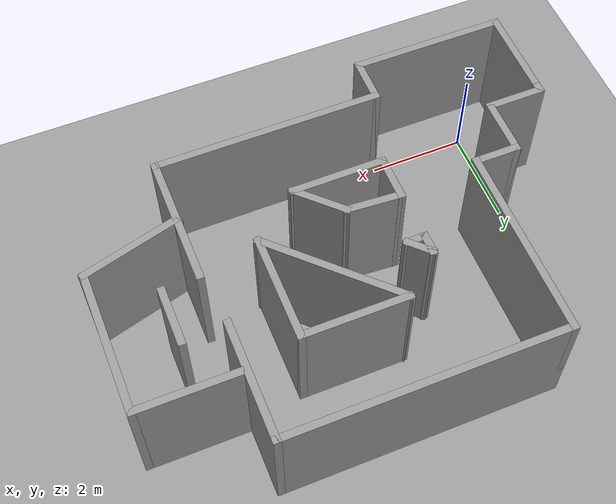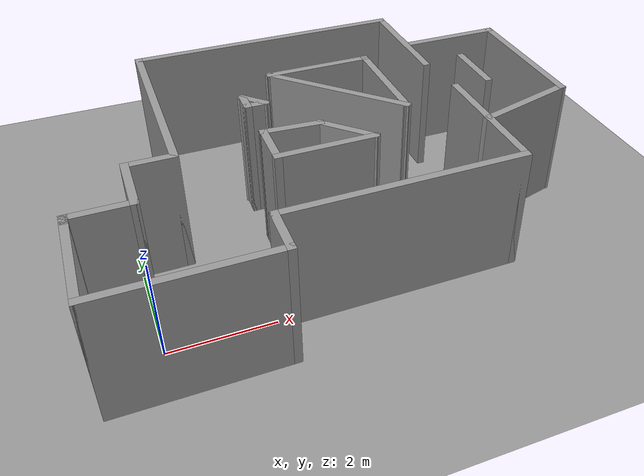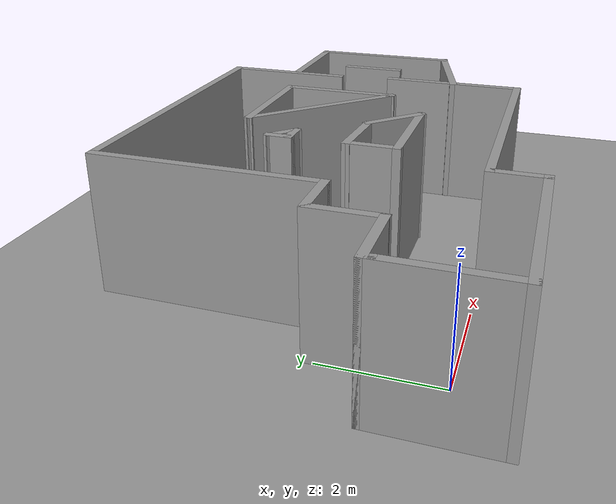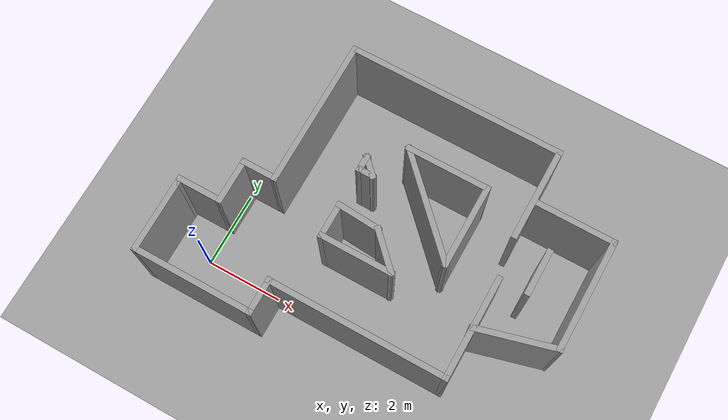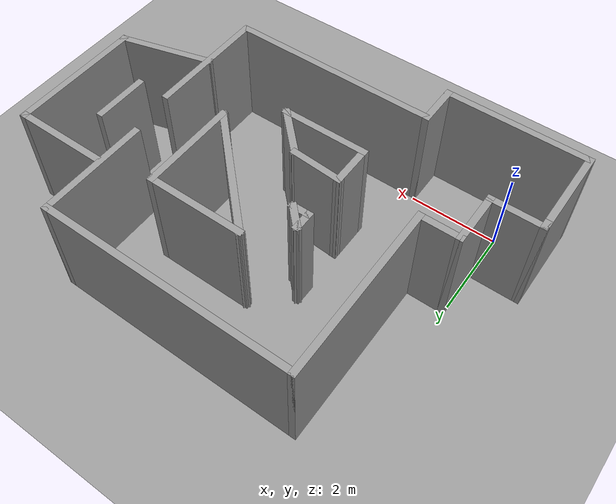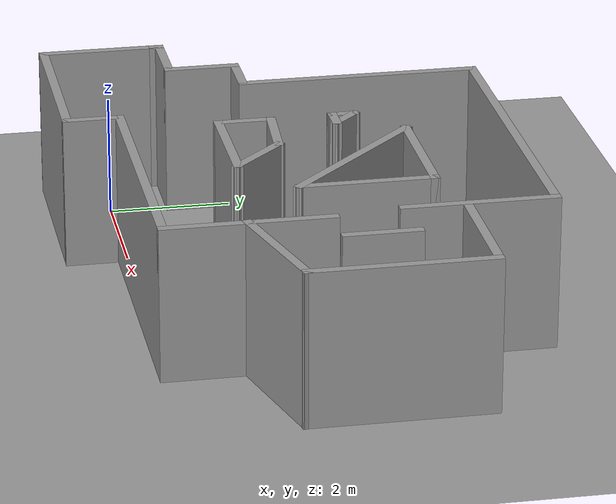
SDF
<sdf version="1.6">
 <world name="default">
  <light name="sun" type="directional">
   <pose>0 0 10 0 -0 0</pose>
   <diffuse>0.8 0.8 0.8 1</diffuse>
   <specular>0.2 0.2 0.2 1</specular>
   <attenuation>
    <range>1000</range>
    <constant>0.9</constant>
    <linear>0.01</linear>
    <quadratic>0.001</quadratic>
   </attenuation>
   <direction>0.5 0.1 -0.9</direction>
  </light>
  <scene><ambient>0.4 0.4 0.4 1</ambient><background>0.7 0.7 0.7 1</background><shadows>1</shadows></scene>
  <physics name="default_physics" default="0" type="ode">
   <max_step_size>0.01</max_step_size>
   <real_time_factor>1</real_time_factor>
   <real_time_update_rate>100</real_time_update_rate>
  </physics>
  <model name="ground_plane_0">
   <static>1</static>
   <link name="link">
    <collision name="collision">
     <geometry><plane><normal>0 0 1</normal><size>100 100</size></plane></geometry>
     <surface><friction><ode><mu>100</mu><mu2>50</mu2></ode></friction></surface>
    </collision>
    <visual name="visual">
     <cast_shadows>0</cast_shadows>
     <geometry><plane><normal>0 0 1</normal><size>100 100</size></plane></geometry>
     <material>
      <script><uri>file://media/materials/scripts/gazebo.material</uri><name>Gazebo/Grey</name></script>
     </material>
    </visual>
    <velocity_decay><linear>0</linear><angular>0</angular></velocity_decay>
   </link>
   <pose>0.497681 0 0 0 -0 0</pose>
  </model>
  <gravity>0 0 -9.8</gravity>
  <magnetic_field>6e-06 2.3e-05 -4.2e-05</magnetic_field>
  <atmosphere type="adiabatic"/>
  <audio><device>default</device></audio>
  <spherical_coordinates>
   <surface_model>EARTH_WGS84</surface_model>
   <latitude_deg>0</latitude_deg>
   <longitude_deg>0</longitude_deg>
   <elevation>0</elevation>
   <heading_deg>0</heading_deg>
  </spherical_coordinates>
  <model name="maze_walls_2">
   <pose>3.77692 2.50924 0 0 -0 0</pose>
   <link name="Wall_100">
    <collision name="Wall_100_Collision">
     <geometry><box><size>4 0.15 2.5</size></box></geometry>
     <pose>0 0 1.25 0 -0 0</pose>
    </collision>
    <visual name="Wall_100_Visual">
     <pose>0 0 1.25 0 -0 0</pose>
     <geometry><box><size>4 0.15 2.5</size></box></geometry>
     <material>
      <script><uri>file://media/materials/scripts/gazebo.material</uri><name>Gazebo/Grey</name></script>
      <ambient>1 1 1 1</ambient>
     </material>
     <meta><layer>0</layer></meta>
    </visual>
    <pose>-2.87718 1.525 0 0 -0 1.5708</pose>
   </link>
   <link name="Wall_101">
    <collision name="Wall_101_Collision">
     <geometry><box><size>5.75 0.15 2.5</size></box></geometry>
     <pose>0 0 1.25 0 -0 0</pose>
    </collision>
    <visual name="Wall_101_Visual">
     <pose>0 0 1.25 0 -0 0</pose>
     <geometry><box><size>5.75 0.15 2.5</size></box></geometry>
     <material>
      <script><uri>file://media/materials/scripts/gazebo.material</uri><name>Gazebo/Grey</name></script>
      <ambient>1 1 1 1</ambient>
     </material>
     <meta><layer>0</layer></meta>
    </visual>
    <pose>-0.07718 3.45 0 0 -0 0</pose>
   </link>
   <link name="Wall_102">
    <collision name="Wall_102_Collision">
     <geometry><box><size>2.5 0.15 2.5</size></box></geometry>
     <pose>0 0 1.25 0 -0 0</pose>
    </collision>
    <visual name="Wall_102_Visual">
     <pose>0 0 1.25 0 -0 0</pose>
     <geometry><box><size>2.5 0.15 2.5</size></box></geometry>
     <material>
      <script><uri>file://media/materials/scripts/gazebo.material</uri><name>Gazebo/Grey</name></script>
      <ambient>1 1 1 1</ambient>
     </material>
     <meta><layer>0</layer></meta>
    </visual>
    <pose>2.72282 2.275 0 0 -0 -1.5708</pose>
   </link>
   <link name="Wall_104">
    <collision name="Wall_104_Collision">
     <geometry><box><size>3.25 0.15 2.5</size></box></geometry>
     <pose>0 0 1.25 0 -0 0</pose>
    </collision>
    <visual name="Wall_104_Visual">
     <pose>0 0 1.25 0 -0 0</pose>
     <geometry><box><size>3.25 0.15 2.5</size></box></geometry>
     <material>
      <script><uri>file://media/materials/scripts/gazebo.material</uri><name>Gazebo/Grey</name></script>
      <ambient>1 1 1 1</ambient>
     </material>
     <meta><layer>0</layer></meta>
    </visual>
    <pose>-3.27718 -3.45 0 0 -0 0</pose>
   </link>
   <link name="Wall_105">
    <collision name="Wall_105_Collision">
     <geometry><box><size>1 0.15 2.5</size></box></geometry>
     <pose>0 0 1.25 0 -0 0</pose>
    </collision>
    <visual name="Wall_105_Visual">
     <pose>0 0 1.25 0 -0 0</pose>
     <geometry><box><size>1 0.15 2.5</size></box></geometry>
     <material>
      <script><uri>file://media/materials/scripts/gazebo.material</uri><name>Gazebo/Grey</name></script>
      <ambient>1 1 1 1</ambient>
     </material>
     <meta><layer>0</layer></meta>
    </visual>
    <pose>-1.72718 -3.025 0 0 -0 1.5708</pose>
   </link>
   <link name="Wall_106">
    <collision name="Wall_106_Collision">
     <geometry><box><size>4.75 0.15 2.5</size></box></geometry>
     <pose>0 0 1.25 0 -0 0</pose>
    </collision>
    <visual name="Wall_106_Visual">
     <pose>0 0 1.25 0 -0 0</pose>
     <geometry><box><size>4.75 0.15 2.5</size></box></geometry>
     <material>
      <script><uri>file://media/materials/scripts/gazebo.material</uri><name>Gazebo/Grey</name></script>
      <ambient>1 1 1 1</ambient>
     </material>
     <meta><layer>0</layer></meta>
    </visual>
    <pose>0.57282 -2.6 0 0 -0 0</pose>
   </link>
   <link name="Wall_107">
    <collision name="Wall_107_Collision">
     <geometry><box><size>2.75 0.15 2.5</size></box></geometry>
     <pose>0 0 1.25 0 -0 0</pose>
    </collision>
    <visual name="Wall_107_Visual">
     <pose>0 0 1.25 0 -0 0</pose>
     <geometry><box><size>2.75 0.15 2.5</size></box></geometry>
     <material>
      <script><uri>file://media/materials/scripts/gazebo.material</uri><name>Gazebo/Grey</name></script>
      <ambient>1 1 1 1</ambient>
     </material>
     <meta><layer>0</layer></meta>
    </visual>
    <pose>2.87282 -1.3 0 0 -0 1.5708</pose>
   </link>
   <link name="Wall_114">
    <collision name="Wall_114_Collision">
     <geometry><box><size>1.25 0.15 2.5</size></box></geometry>
     <pose>0 0 1.25 0 -0 0</pose>
    </collision>
    <visual name="Wall_114_Visual">
     <pose>0 0 1.25 0 -0 0</pose>
     <geometry><box><size>1.25 0.15 2.5</size></box></geometry>
     <material>
      <script><uri>file://media/materials/scripts/gazebo.material</uri><name>Gazebo/Grey</name></script>
      <ambient>1 1 1 1</ambient>
     </material>
     <meta><layer>0</layer></meta>
    </visual>
    <pose>3.59965 0.589532 0 0 -0 1.5708</pose>
   </link>
   <link name="Wall_118">
    <collision name="Wall_118_Collision">
     <geometry><box><size>3 0.15 2.5</size></box></geometry>
     <pose>0 0 1.25 0 -0 0</pose>
    </collision>
    <visual name="Wall_118_Visual">
     <pose>0 0 1.25 0 -0 0</pose>
     <geometry><box><size>3 0.15 2.5</size></box></geometry>
     <material>
      <script><uri>file://media/materials/scripts/gazebo.material</uri><name>Gazebo/Grey</name></script>
      <ambient>1 1 1 1</ambient>
     </material>
     <meta><layer>0</layer></meta>
    </visual>
    <pose>4.81026 0.644802 0 0 -0 1.5708</pose>
   </link>
   <link name="Wall_119">
    <collision name="Wall_119_Collision">
     <geometry><box><size>2.09837 0.15 2.5</size></box></geometry>
     <pose>0 0 1.25 0 -0 0</pose>
    </collision>
    <visual name="Wall_119_Visual">
     <pose>0 0 1.25 0 -0 0</pose>
     <geometry><box><size>2.09837 0.15 2.5</size></box></geometry>
     <material>
      <script><uri>file://media/materials/scripts/gazebo.material</uri><name>Gazebo/Grey</name></script>
      <ambient>1 1 1 1</ambient>
     </material>
     <meta><layer>0</layer></meta>
    </visual>
    <pose>3.81968 2.0698 0 0 -0 3.14159</pose>
   </link>
   <link name="Wall_121">
    <collision name="Wall_121_Collision">
     <geometry><box><size>2.16776 0.15 2.5</size></box></geometry>
     <pose>0 0 1.25 0 -0 0</pose>
    </collision>
    <visual name="Wall_121_Visual">
     <pose>0 0 1.25 0 -0 0</pose>
     <geometry><box><size>2.16776 0.15 2.5</size></box></geometry>
     <material>
      <script><uri>file://media/materials/scripts/gazebo.material</uri><name>Gazebo/Grey</name></script>
      <ambient>1 1 1 1</ambient>
     </material>
     <meta><layer>0</layer></meta>
    </visual>
    <pose>3.83608 -1.04251 0 0 -0 0.263027</pose>
   </link>
   <link name="Wall_129">
    <collision name="Wall_129_Collision">
     <geometry><box><size>1.25 0.15 2.5</size></box></geometry>
     <pose>0 0 1.25 0 -0 0</pose>
    </collision>
    <visual name="Wall_129_Visual">
     <pose>0 0 1.25 0 -0 0</pose>
     <geometry><box><size>1.25 0.15 2.5</size></box></geometry>
     <material>
      <script><uri>file://media/materials/scripts/gazebo.material</uri><name>Gazebo/Grey</name></script>
      <ambient>1 1 1 1</ambient>
     </material>
     <meta><layer>0</layer></meta>
    </visual>
    <pose>0.250587 -0.693664 0 0 -0 -0.785398</pose>
   </link>
   <link name="Wall_130">
    <collision name="Wall_130_Collision">
     <geometry><box><size>2 0.15 2.5</size></box></geometry>
     <pose>0 0 1.25 0 -0 0</pose>
    </collision>
    <visual name="Wall_130_Visual">
     <pose>0 0 1.25 0 -0 0</pose>
     <geometry><box><size>2 0.15 2.5</size></box></geometry>
     <material>
      <script><uri>file://media/materials/scripts/gazebo.material</uri><name>Gazebo/Grey</name></script>
      <ambient>1 1 1 1</ambient>
     </material>
     <meta><layer>0</layer></meta>
    </visual>
    <pose>-0.285504 -1.08257 0 0 -0 3.14159</pose>
   </link>
   <link name="Wall_131">
    <collision name="Wall_131_Collision">
     <geometry><box><size>1 0.15 2.5</size></box></geometry>
     <pose>0 0 1.25 0 -0 0</pose>
    </collision>
    <visual name="Wall_131_Visual">
     <pose>0 0 1.25 0 -0 0</pose>
     <geometry><box><size>1 0.15 2.5</size></box></geometry>
     <material>
      <script><uri>file://media/materials/scripts/gazebo.material</uri><name>Gazebo/Grey</name></script>
      <ambient>1 1 1 1</ambient>
     </material>
     <meta><layer>0</layer></meta>
    </visual>
    <pose>-1.2105 -0.657572 0 0 -0 1.5708</pose>
   </link>
   <link name="Wall_132">
    <collision name="Wall_132_Collision">
     <geometry><box><size>1.22461 0.15 2.5</size></box></geometry>
     <pose>0 0 1.25 0 -0 0</pose>
    </collision>
    <visual name="Wall_132_Visual">
     <pose>0 0 1.25 0 -0 0</pose>
     <geometry><box><size>1.22461 0.15 2.5</size></box></geometry>
     <material>
      <script><uri>file://media/materials/scripts/gazebo.material</uri><name>Gazebo/Grey</name></script>
      <ambient>1 1 1 1</ambient>
     </material>
     <meta><layer>0</layer></meta>
    </visual>
    <pose>-0.674413 -0.268664 0 0 -0 -0.067222</pose>
   </link>
   <link name="Wall_134">
    <collision name="Wall_134_Collision">
     <geometry><box><size>0.5 0.15 2.5</size></box></geometry>
     <pose>0 0 1.25 0 -0 0</pose>
    </collision>
    <visual name="Wall_134_Visual">
     <pose>0 0 1.25 0 -0 0</pose>
     <geometry><box><size>0.5 0.15 2.5</size></box></geometry>
     <material>
      <script><uri>file://media/materials/scripts/gazebo.material</uri><name>Gazebo/Grey</name></script>
      <ambient>1 1 1 1</ambient>
     </material>
     <meta><layer>0</layer></meta>
    </visual>
    <pose>-1.23676 0.946576 0 0 -0 -1.5708</pose>
   </link>
   <link name="Wall_135">
    <collision name="Wall_135_Collision">
     <geometry><box><size>0.5 0.15 2.5</size></box></geometry>
     <pose>0 0 1.25 0 -0 0</pose>
    </collision>
    <visual name="Wall_135_Visual">
     <pose>0 0 1.25 0 -0 0</pose>
     <geometry><box><size>0.5 0.15 2.5</size></box></geometry>
     <material>
      <script><uri>file://media/materials/scripts/gazebo.material</uri><name>Gazebo/Grey</name></script>
      <ambient>1 1 1 1</ambient>
     </material>
     <meta><layer>0</layer></meta>
    </visual>
    <pose>-1.06176 0.771576 0 0 -0 0</pose>
   </link>
   <link name="Wall_136">
    <collision name="Wall_136_Collision">
     <geometry><box><size>0.644975 0.15 2.5</size></box></geometry>
     <pose>0 0 1.25 0 -0 0</pose>
    </collision>
    <visual name="Wall_136_Visual">
     <pose>0 0 1.25 0 -0 0</pose>
     <geometry><box><size>0.644975 0.15 2.5</size></box></geometry>
     <material>
      <script><uri>file://media/materials/scripts/gazebo.material</uri><name>Gazebo/Grey</name></script>
      <ambient>1 1 1 1</ambient>
     </material>
     <meta><layer>0</layer></meta>
    </visual>
    <pose>-1.06176 0.946576 0 0 -0 2.35619</pose>
   </link>
   <link name="Wall_140">
    <collision name="Wall_140_Collision">
     <geometry><box><size>2.25 0.15 2.5</size></box></geometry>
     <pose>0 0 1.25 0 -0 0</pose>
    </collision>
    <visual name="Wall_140_Visual">
     <pose>0 0 1.25 0 -0 0</pose>
     <geometry><box><size>2.25 0.15 2.5</size></box></geometry>
     <material>
      <script><uri>file://media/materials/scripts/gazebo.material</uri><name>Gazebo/Grey</name></script>
      <ambient>1 1 1 1</ambient>
     </material>
     <meta><layer>0</layer></meta>
    </visual>
    <pose>1.6323 0.76164 0 0 -0 1.5708</pose>
   </link>
   <link name="Wall_141">
    <collision name="Wall_141_Collision">
     <geometry><box><size>2.25 0.15 2.5</size></box></geometry>
     <pose>0 0 1.25 0 -0 0</pose>
    </collision>
    <visual name="Wall_141_Visual">
     <pose>0 0 1.25 0 -0 0</pose>
     <geometry><box><size>2.25 0.15 2.5</size></box></geometry>
     <material>
      <script><uri>file://media/materials/scripts/gazebo.material</uri><name>Gazebo/Grey</name></script>
      <ambient>1 1 1 1</ambient>
     </material>
     <meta><layer>0</layer></meta>
    </visual>
    <pose>0.582296 1.81164 0 0 -0 3.14159</pose>
   </link>
   <link name="Wall_142">
    <collision name="Wall_142_Collision">
     <geometry><box><size>3.11985 0.15 2.5</size></box></geometry>
     <pose>0 0 1.25 0 -0 0</pose>
    </collision>
    <visual name="Wall_142_Visual">
     <pose>0 0 1.25 0 -0 0</pose>
     <geometry><box><size>3.11985 0.15 2.5</size></box></geometry>
     <material>
      <script><uri>file://media/materials/scripts/gazebo.material</uri><name>Gazebo/Grey</name></script>
      <ambient>1 1 1 1</ambient>
     </material>
     <meta><layer>0</layer></meta>
    </visual>
    <pose>0.582296 0.76164 0 0 -0 -0.785398</pose>
   </link>
   <link name="Wall_94">
    <collision name="Wall_94_Collision">
     <geometry><box><size>2 0.15 2.5</size></box></geometry>
     <pose>0 0 1.25 0 -0 0</pose>
    </collision>
    <visual name="Wall_94_Visual">
     <pose>0 0 1.25 0 -0 0</pose>
     <geometry><box><size>2 0.15 2.5</size></box></geometry>
     <material>
      <script><uri>file://media/materials/scripts/gazebo.material</uri><name>Gazebo/Grey</name></script>
      <ambient>1 1 1 1</ambient>
     </material>
     <meta><layer>0</layer></meta>
    </visual>
    <pose>-4.82718 -2.525 0 0 -0 1.5708</pose>
   </link>
   <link name="Wall_96">
    <collision name="Wall_96_Collision">
     <geometry><box><size>0.25 0.15 2.5</size></box></geometry>
     <pose>0 0 1.25 0 -0 0</pose>
    </collision>
    <visual name="Wall_96_Visual">
     <pose>0 0 1.25 0 -0 0</pose>
     <geometry><box><size>0.25 0.15 2.5</size></box></geometry>
     <material>
      <script><uri>file://media/materials/scripts/gazebo.material</uri><name>Gazebo/Grey</name></script>
      <ambient>1 1 1 1</ambient>
     </material>
     <meta><layer>0</layer></meta>
    </visual>
    <pose>-4.82718 -1.55 0 0 -0 1.5708</pose>
   </link>
   <link name="Wall_97">
    <collision name="Wall_97_Collision">
     <geometry><box><size>1.25 0.15 2.5</size></box></geometry>
     <pose>0 0 1.25 0 -0 0</pose>
    </collision>
    <visual name="Wall_97_Visual">
     <pose>0 0 1.25 0 -0 0</pose>
     <geometry><box><size>1.25 0.15 2.5</size></box></geometry>
     <material>
      <script><uri>file://media/materials/scripts/gazebo.material</uri><name>Gazebo/Grey</name></script>
      <ambient>1 1 1 1</ambient>
     </material>
     <meta><layer>0</layer></meta>
    </visual>
    <pose>-4.27718 -1.5 0 0 -0 0</pose>
   </link>
   <link name="Wall_98">
    <collision name="Wall_98_Collision">
     <geometry><box><size>1.25 0.15 2.5</size></box></geometry>
     <pose>0 0 1.25 0 -0 0</pose>
    </collision>
    <visual name="Wall_98_Visual">
     <pose>0 0 1.25 0 -0 0</pose>
     <geometry><box><size>1.25 0.15 2.5</size></box></geometry>
     <material>
      <script><uri>file://media/materials/scripts/gazebo.material</uri><name>Gazebo/Grey</name></script>
      <ambient>1 1 1 1</ambient>
     </material>
     <meta><layer>0</layer></meta>
    </visual>
    <pose>-3.72718 -0.95 0 0 -0 1.5708</pose>
   </link>
   <link name="Wall_99">
    <collision name="Wall_99_Collision">
     <geometry><box><size>1 0.15 2.5</size></box></geometry>
     <pose>0 0 1.25 0 -0 0</pose>
    </collision>
    <visual name="Wall_99_Visual">
     <pose>0 0 1.25 0 -0 0</pose>
     <geometry><box><size>1 0.15 2.5</size></box></geometry>
     <material>
      <script><uri>file://media/materials/scripts/gazebo.material</uri><name>Gazebo/Grey</name></script>
      <ambient>1 1 1 1</ambient>
     </material>
     <meta><layer>0</layer></meta>
    </visual>
    <pose>-3.30218 -0.4 0 0 -0 0</pose>
   </link>
   <static>1</static>
  </model>
 </world>
</sdf>
